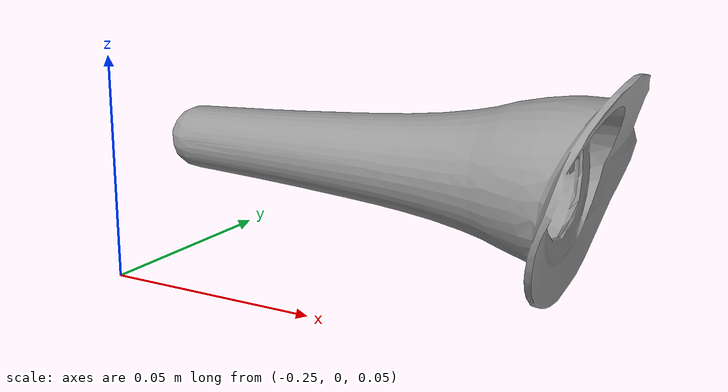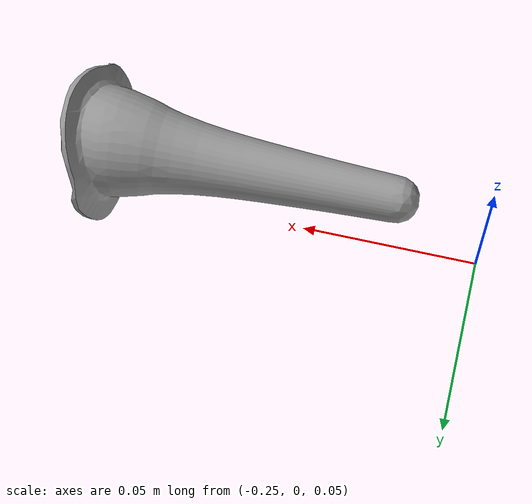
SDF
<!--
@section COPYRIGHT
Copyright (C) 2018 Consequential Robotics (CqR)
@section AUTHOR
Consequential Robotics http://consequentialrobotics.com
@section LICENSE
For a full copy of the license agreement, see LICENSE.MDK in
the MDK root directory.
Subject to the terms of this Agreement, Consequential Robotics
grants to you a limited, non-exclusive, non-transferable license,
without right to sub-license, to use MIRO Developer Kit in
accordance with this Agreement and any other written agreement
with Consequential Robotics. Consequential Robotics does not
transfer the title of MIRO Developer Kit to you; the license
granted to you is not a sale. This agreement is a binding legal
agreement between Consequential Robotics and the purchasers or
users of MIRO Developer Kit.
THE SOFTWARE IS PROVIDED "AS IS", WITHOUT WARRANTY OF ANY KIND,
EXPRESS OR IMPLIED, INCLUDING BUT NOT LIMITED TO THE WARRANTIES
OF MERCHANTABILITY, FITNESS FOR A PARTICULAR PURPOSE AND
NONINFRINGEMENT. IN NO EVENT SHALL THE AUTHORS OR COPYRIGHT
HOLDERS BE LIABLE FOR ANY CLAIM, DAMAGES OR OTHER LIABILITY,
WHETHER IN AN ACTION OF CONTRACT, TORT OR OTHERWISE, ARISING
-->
<?xml version="1.0"?>
<sdf version="1.5">
  <model name="miro_tail">
    <link name="tail_gmbl">
      <inertial>
        <pose>-0.143 0 0.085 0 0 0</pose>
        <mass>0.056549</mass>
        <inertia>
          <ixx>0.00003393</ixx>
          <ixy>0.0</ixy>
          <ixz>0.0</ixz>
          <iyy>0.00003393</iyy>
          <iyz>0.0</iyz>
          <izz>0.00003393</izz>
        </inertia>
      </inertial>
    </link>
    <joint type="revolute" name="body_tail_gmbl">
      <pose>-0.143 0 0.085 0 0 0</pose>
      <parent>miro_body::body</parent>
      <child>miro_tail::tail_gmbl</child>
      <axis>
        <xyz>0 1 0</xyz>
        <limit>
          <lower>-1.57</lower>
          <upper>1.57</upper>
        </limit>
        <dynamics>
          <friction>0.01</friction>
          <damping>0.02</damping>
        </dynamics>
      </axis>
    </joint>
    <link name="tail">
      <inertial>
        <pose>-0.143 0 0.085 0 0 0</pose>
        <mass>0.056549</mass>
        <inertia>
          <ixx>0.00003393</ixx>
          <ixy>0.0</ixy>
          <ixz>0.0</ixz>
          <iyy>0.00003393</iyy>
          <iyz>0.0</iyz>
          <izz>0.00003393</izz>
        </inertia>
      </inertial>
      <visual name="visual_tail">
        <pose>0 0 0 0 0 0</pose>
        <geometry>
          <mesh>
            <uri>model://miro_model/meshes/tail.dae</uri>
          </mesh>
        </geometry>
        <material>
          <script>
            <uri>file://media/materials/scripts/gazebo.material</uri>
            <name>Gazebo/Grey</name>
          </script>
        </material>
      </visual>
      <collision name="collision_tail">
        <pose>0 0 0 0 0 0</pose>
        <geometry>
          <mesh>
            <uri>model://miro_model/meshes/tail_collision.dae</uri>
          </mesh>
        </geometry>
        <surface>
          <friction>
            <ode>
              <mu>0.1</mu>
              <mu2>0.1</mu2>
            </ode>
          </friction>
        </surface>
      </collision>
    </link>
    <joint type="revolute" name="tail_gmbl_tail">
      <pose>-0.143 0 0.085 0 0 0</pose>
      <parent>miro_tail::tail_gmbl</parent>
      <child>miro_tail::tail</child>
      <axis>
        <xyz>0 0 1</xyz>
        <limit>
          <lower>-1.57</lower>
          <upper>1.57</upper>
        </limit>
        <dynamics>
          <friction>0.01</friction>
          <damping>0.02</damping>
        </dynamics>
      </axis>
    </joint>
  </model>
</sdf>
